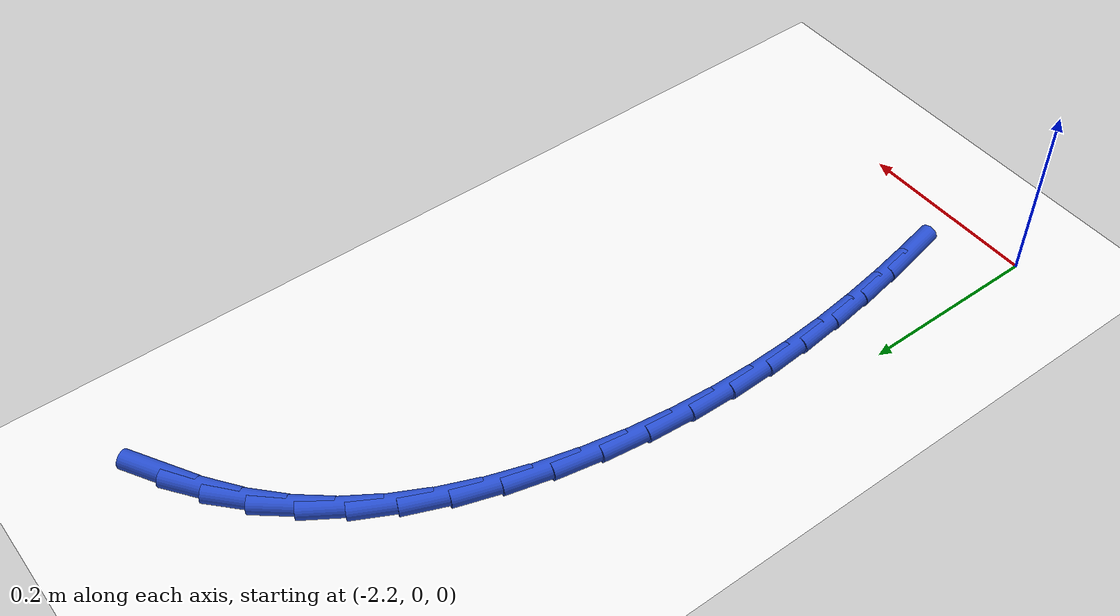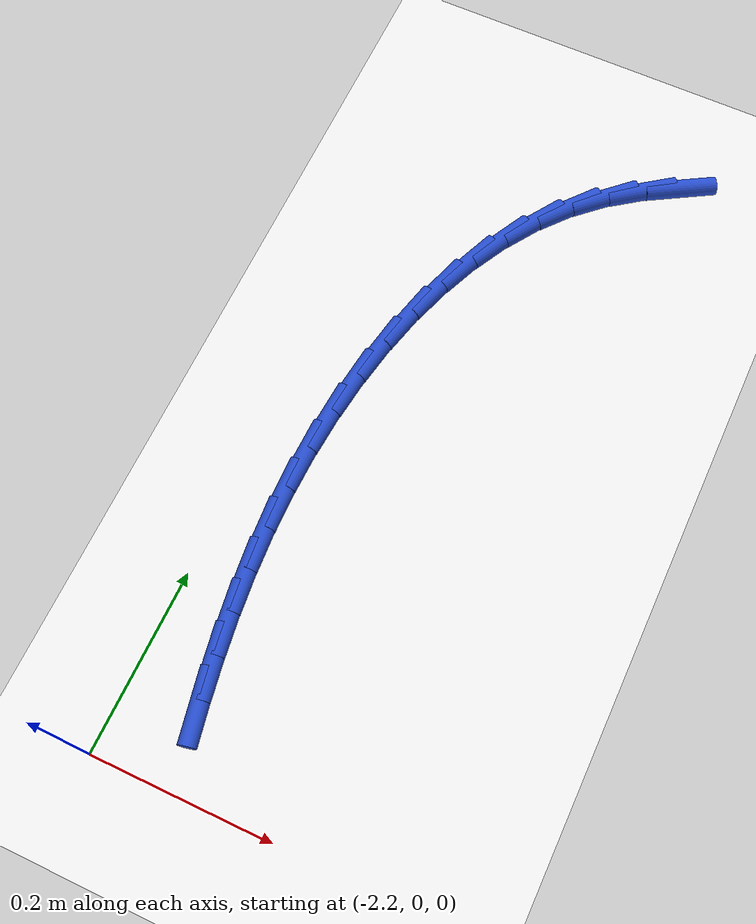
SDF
<sdf version="1.6">
 <world name="default">
  <model name="ground_plane">
   <static>1</static>
   <link name="link">
    <collision name="collision">
     <geometry><plane><normal>0 0 1</normal><size>100 100</size></plane></geometry>
     <surface><friction><ode><mu>100</mu><mu2>50</mu2></ode></friction></surface>
    </collision>
    <visual name="visual">
     <cast_shadows>0</cast_shadows>
     <geometry><plane><normal>0 0 1</normal><size>100 100</size></plane></geometry>
     <material>
      <script><uri>file://media/materials/scripts/gazebo.material</uri><name>Gazebo/WhiteGlow</name></script>
     </material>
    </visual>
   </link>
  </model>
  <model name="line">
   <link name="link_58">
    <pose>-1.9041700815181815 0.8308726979555571 0.01 0 1.57 0.5256009580645761</pose>
    <collision name="collision">
     <geometry><cylinder><radius>0.01</radius><length>0.08</length></cylinder></geometry>
    </collision>
    <visual name="visual">
     <material>
      <script><name>Gazebo/Blue</name><uri>file://media/materials/scripts/gazebo.material</uri></script>
     </material>
     <geometry><cylinder><radius>0.01</radius><length>0.08</length></cylinder></geometry>
    </visual>
   </link>
   <link name="link_59">
    <pose>-1.9425937984537116 0.8085860607357833 0.01 0 1.57 0.626161164494511</pose>
    <collision name="collision">
     <geometry><cylinder><radius>0.01</radius><length>0.08</length></cylinder></geometry>
    </collision>
    <visual name="visual">
     <material>
      <script><name>Gazebo/Blue</name><uri>file://media/materials/scripts/gazebo.material</uri></script>
     </material>
     <geometry><cylinder><radius>0.01</radius><length>0.08</length></cylinder></geometry>
    </visual>
   </link>
   <link name="link_60">
    <pose>-1.9780700684956938 0.782927794539369 0.01 0 1.57 0.7469293131444559</pose>
    <collision name="collision">
     <geometry><cylinder><radius>0.01</radius><length>0.08</length></cylinder></geometry>
    </collision>
    <visual name="visual">
     <material>
      <script><name>Gazebo/Blue</name><uri>file://media/materials/scripts/gazebo.material</uri></script>
     </material>
     <geometry><cylinder><radius>0.01</radius><length>0.08</length></cylinder></geometry>
    </visual>
   </link>
   <link name="link_61">
    <pose>-2.0100902542642767 0.7532810361025792 0.01 0 1.57 0.873952563246763</pose>
    <collision name="collision">
     <geometry><cylinder><radius>0.01</radius><length>0.08</length></cylinder></geometry>
    </collision>
    <visual name="visual">
     <material>
      <script><name>Gazebo/Blue</name><uri>file://media/materials/scripts/gazebo.material</uri></script>
     </material>
     <geometry><cylinder><radius>0.01</radius><length>0.08</length></cylinder></geometry>
    </visual>
   </link>
   <link name="link_62">
    <pose>-2.03839172720948 0.7194642980330835 0.01 0 1.57 0.9885404855331816</pose>
    <collision name="collision">
     <geometry><cylinder><radius>0.01</radius><length>0.08</length></cylinder></geometry>
    </collision>
    <visual name="visual">
     <material>
      <script><name>Gazebo/Blue</name><uri>file://media/materials/scripts/gazebo.material</uri></script>
     </material>
     <geometry><cylinder><radius>0.01</radius><length>0.08</length></cylinder></geometry>
    </visual>
   </link>
   <link name="link_63">
    <pose>-2.063085825758061 0.6819579236478726 0.01 0 1.57 1.089612237796458</pose>
    <collision name="collision">
     <geometry><cylinder><radius>0.01</radius><length>0.08</length></cylinder></geometry>
    </collision>
    <visual name="visual">
     <material>
      <script><name>Gazebo/Blue</name><uri>file://media/materials/scripts/gazebo.material</uri></script>
     </material>
     <geometry><cylinder><radius>0.01</radius><length>0.08</length></cylinder></geometry>
    </visual>
   </link>
   <link name="link_64">
    <pose>-2.0843152139395604 0.6412976949716238 0.01 0 1.57 1.1784743448816928</pose>
    <collision name="collision">
     <geometry><cylinder><radius>0.01</radius><length>0.08</length></cylinder></geometry>
    </collision>
    <visual name="visual">
     <material>
      <script><name>Gazebo/Blue</name><uri>file://media/materials/scripts/gazebo.material</uri></script>
     </material>
     <geometry><cylinder><radius>0.01</radius><length>0.08</length></cylinder></geometry>
    </visual>
   </link>
   <link name="link_65">
    <pose>-2.1022225557835137 0.5980193940290159 0.01 0 1.57 1.2568482442506064</pose>
    <collision name="collision">
     <geometry><cylinder><radius>0.01</radius><length>0.08</length></cylinder></geometry>
    </collision>
    <visual name="visual">
     <material>
      <script><name>Gazebo/Blue</name><uri>file://media/materials/scripts/gazebo.material</uri></script>
     </material>
     <geometry><cylinder><radius>0.01</radius><length>0.08</length></cylinder></geometry>
    </visual>
   </link>
   <link name="link_66">
    <pose>-2.1169505153194628 0.5526588028447271 0.01 0 1.57 1.3265307612237203</pose>
    <collision name="collision">
     <geometry><cylinder><radius>0.01</radius><length>0.08</length></cylinder></geometry>
    </collision>
    <visual name="visual">
     <material>
      <script><name>Gazebo/Blue</name><uri>file://media/materials/scripts/gazebo.material</uri></script>
     </material>
     <geometry><cylinder><radius>0.01</radius><length>0.08</length></cylinder></geometry>
    </visual>
   </link>
   <link name="link_67">
    <pose>-2.128641756576944 0.5057517034434357 0.01 0 1.57 1.3892291839897848</pose>
    <collision name="collision">
     <geometry><cylinder><radius>0.01</radius><length>0.08</length></cylinder></geometry>
    </collision>
    <visual name="visual">
     <material>
      <script><name>Gazebo/Blue</name><uri>file://media/materials/scripts/gazebo.material</uri></script>
     </material>
     <geometry><cylinder><radius>0.01</radius><length>0.08</length></cylinder></geometry>
    </visual>
   </link>
   <link name="link_68">
    <pose>-2.1374389435854986 0.4578338778498205 0.01 0 1.57 1.4465084641314208</pose>
    <collision name="collision">
     <geometry><cylinder><radius>0.01</radius><length>0.08</length></cylinder></geometry>
    </collision>
    <visual name="visual">
     <material>
      <script><name>Gazebo/Blue</name><uri>file://media/materials/scripts/gazebo.material</uri></script>
     </material>
     <geometry><cylinder><radius>0.01</radius><length>0.08</length></cylinder></geometry>
    </visual>
   </link>
   <link name="link_69">
    <pose>-2.143484740374664 0.4094411080885597 0.01 0 1.57 1.499801975492854</pose>
    <collision name="collision">
     <geometry><cylinder><radius>0.01</radius><length>0.08</length></cylinder></geometry>
    </collision>
    <visual name="visual">
     <material>
      <script><name>Gazebo/Blue</name><uri>file://media/materials/scripts/gazebo.material</uri></script>
     </material>
     <geometry><cylinder><radius>0.01</radius><length>0.08</length></cylinder></geometry>
    </visual>
   </link>
   <link name="link_70">
    <pose>-2.1469218109739794 0.3611091761843317 0.01 0 1.57 1.5504005766205977</pose>
    <collision name="collision">
     <geometry><cylinder><radius>0.01</radius><length>0.08</length></cylinder></geometry>
    </collision>
    <visual name="visual">
     <material>
      <script><name>Gazebo/Blue</name><uri>file://media/materials/scripts/gazebo.material</uri></script>
     </material>
     <geometry><cylinder><radius>0.01</radius><length>0.08</length></cylinder></geometry>
    </visual>
   </link>
   <link name="link_71">
    <pose>-2.147895999239928 0.3133515222230099 0.01 0 1.57 -1.5432584898227593</pose>
    <collision name="collision">
     <geometry><cylinder><radius>0.01</radius><length>0.08</length></cylinder></geometry>
    </collision>
    <visual name="visual">
     <material>
      <script><name>Gazebo/Blue</name><uri>file://media/materials/scripts/gazebo.material</uri></script>
     </material>
     <geometry><cylinder><radius>0.01</radius><length>0.08</length></cylinder></geometry>
    </visual>
   </link>
   <link name="link_72">
    <pose>-2.146601188015894 0.26634405719710685 0.01 0 1.57 -1.4990056814992994</pose>
    <collision name="collision">
     <geometry><cylinder><radius>0.01</radius><length>0.08</length></cylinder></geometry>
    </collision>
    <visual name="visual">
     <material>
      <script><name>Gazebo/Blue</name><uri>file://media/materials/scripts/gazebo.material</uri></script>
     </material>
     <geometry><cylinder><radius>0.01</radius><length>0.08</length></cylinder></geometry>
    </visual>
   </link>
   <link name="link_73">
    <pose>-2.1432684770053423 0.2200012008843834 0.01 0 1.57 -1.4589973217170467</pose>
    <collision name="collision">
     <geometry><cylinder><radius>0.01</radius><length>0.08</length></cylinder></geometry>
    </collision>
    <visual name="visual">
     <material>
      <script><name>Gazebo/Blue</name><uri>file://media/materials/scripts/gazebo.material</uri></script>
     </material>
     <geometry><cylinder><radius>0.01</radius><length>0.08</length></cylinder></geometry>
    </visual>
   </link>
   <link name="link_74">
    <pose>-2.1381299370108358 0.17423054997535303 0.01 0 1.57 -1.4236630339223861</pose>
    <collision name="collision">
     <geometry><cylinder><radius>0.01</radius><length>0.08</length></cylinder></geometry>
    </collision>
    <visual name="visual">
     <material>
      <script><name>Gazebo/Blue</name><uri>file://media/materials/scripts/gazebo.material</uri></script>
     </material>
     <geometry><cylinder><radius>0.01</radius><length>0.08</length></cylinder></geometry>
    </visual>
   </link>
   <link name="link_75">
    <pose>-2.131417638834939 0.12893970116052927 0.01 0 1.57 -1.3933211553451614</pose>
    <collision name="collision">
     <geometry><cylinder><radius>0.01</radius><length>0.08</length></cylinder></geometry>
    </collision>
    <visual name="visual">
     <material>
      <script><name>Gazebo/Blue</name><uri>file://media/materials/scripts/gazebo.material</uri></script>
     </material>
     <geometry><cylinder><radius>0.01</radius><length>0.08</length></cylinder></geometry>
    </visual>
   </link>
   <link name="link_76">
    <pose>-2.123363653280217 0.08403625113042539 0.01 0 1.57 -1.3681918325849494</pose>
    <collision name="collision">
     <geometry><cylinder><radius>0.01</radius><length>0.08</length></cylinder></geometry>
    </collision>
    <visual name="visual">
     <material>
      <script><name>Gazebo/Blue</name><uri>file://media/materials/scripts/gazebo.material</uri></script>
     </material>
     <geometry><cylinder><radius>0.01</radius><length>0.08</length></cylinder></geometry>
    </visual>
   </link>
  </model>
 </world>
</sdf>
